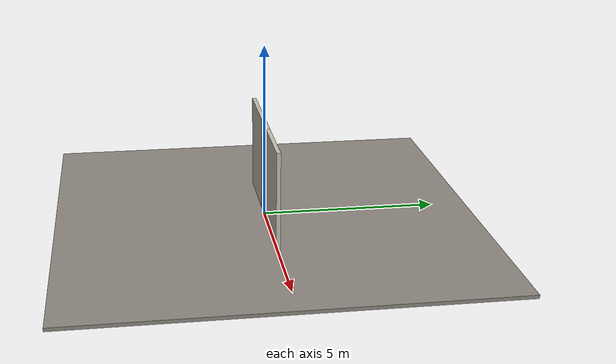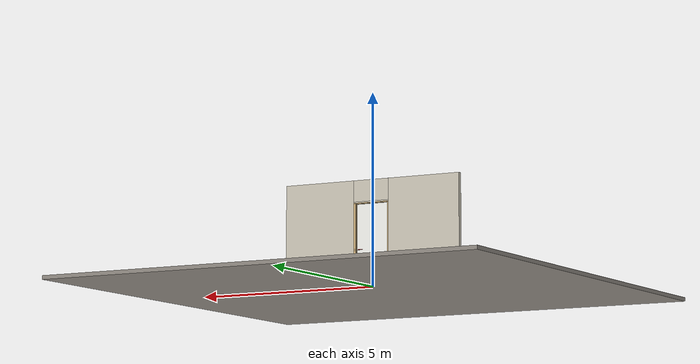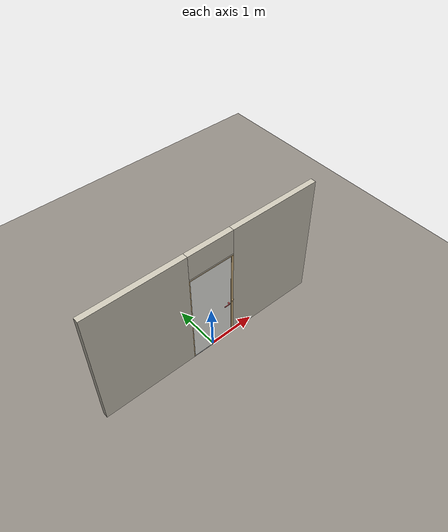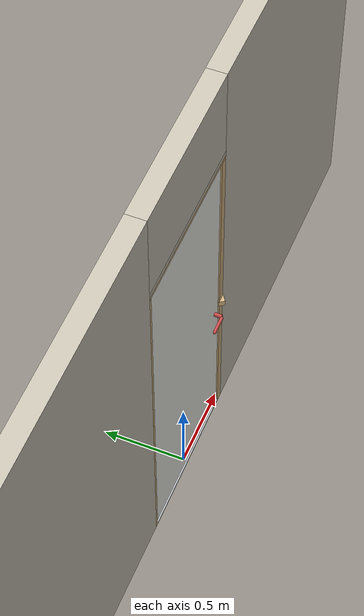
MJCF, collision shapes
<?xml version="1.0" ?>
<mujoco model="db0781_swing_single_minimal">
  <compiler angle="radian" meshdir="../../hardware" texturedir="../../textures" autolimits="true" inertiafromgeom="false"/>
  <option timestep="0.002" integrator="implicitfast" cone="elliptic" impratio="10" noslip_iterations="3">
    <flag multiccd="enable"/>
  </option>
  <size memory="16M"/>
  <default>
    <geom condim="4" solref="0.005 1" solimp="0.95 0.99 0.001"/>
    <joint solreflimit="0.005 1" solimplimit="0.95 0.99 0.001"/>
    <tendon solreflimit="0.005 1"/>
    <equality solref="0.002 1"/>
  </default>
  <visual>
    <headlight ambient="0.4 0.4 0.4" diffuse="0.7 0.7 0.7" specular="0.2 0.2 0.2"/>
    <quality shadowsize="4096"/>
    <map znear="0.01" zfar="60"/>
  </visual>
  <asset>
    <mesh name="lever_9f02b544cf" file="lever_9f02b544cf.obj"/>
    <material name="mat_floor" rgba="0.55 0.53 0.5 1" specular="0.2" shininess="0.15" reflectance="0"/>
    <material name="mat_wall" rgba="0.78 0.76 0.7 1" specular="0.2" shininess="0.1" reflectance="0"/>
    <material name="mat_leaf" rgba="0.93 0.93 0.91 1" specular="0.23" shininess="0.63" reflectance="0.02"/>
    <material name="mat_leaf_panel" rgba="0.856 0.856 0.837 1" specular="0.23" shininess="0.63" reflectance="0.02"/>
    <material name="mat_hinge" rgba="0.65 0.66 0.68 1" specular="0.74" shininess="0.5" reflectance="0.36"/>
    <material name="mat_op_nickel_satin" rgba="0.72 0.7 0.66 1" specular="0.8" shininess="0.65" reflectance="0.4"/>
    <material name="mat_trim" rgba="0.85 0.66 0.3 1" specular="0.8" shininess="0.75" reflectance="0.4"/>
    <material name="mat_bolt" rgba="0.85 0.66 0.3 1" specular="0.8" shininess="0.75" reflectance="0.4"/>
    <material name="mat_chain" rgba="0.85 0.66 0.3 1" specular="0.8" shininess="0.75" reflectance="0.4"/>
    <material name="mat_frame" rgba="0.82 0.7 0.5 1" specular="0.2" shininess="0.45" reflectance="0"/>
    <material name="mat_seal" rgba="0.1 0.1 0.1 1" specular="0.2" shininess="0.1" reflectance="0"/>
    <material name="mat_threshold" rgba="0.8 0.81 0.83 1" specular="0.8" shininess="0.6" reflectance="0.4"/>
    <material name="mat_numbers" rgba="0.05 0.05 0.05 1" specular="0.38" shininess="0.3" reflectance="0.12"/>
    <material name="mat_sidelite" rgba="0.85 0.92 0.95 0.25" specular="0.2" shininess="0.95" reflectance="0.1"/>
    <material name="mat_bumper_stop" rgba="0.08 0.08 0.08 1" specular="0.2" shininess="0.1" reflectance="0"/>
    <material name="mat_stop_base" rgba="0.9 0.9 0.92 1" specular="0.8" shininess="0.9" reflectance="0.4"/>
    <texture name="skybox" type="skybox" builtin="gradient" rgb1="0.6 0.7 0.85" rgb2="0.9 0.92 0.95" width="256" height="256"/>
  </asset>
  <worldbody>
    <light name="sun" pos="1.5 -2.5 4" dir="-0.3 0.5 -0.8" directional="true" diffuse="0.8 0.8 0.8" specular="0.3 0.3 0.3" castshadow="true"/>
    <light name="fill" pos="-1.5 2.5 3" dir="0.3 -0.5 -0.7" directional="true" diffuse="0.35 0.35 0.4" castshadow="false"/>
    <camera name="robot_view" pos="0 -2.609312 1.812087" xyaxes="1 0 0 0 0.26963 0.962964" fovy="52"/>
    <camera name="far_view" pos="0 2.666313 1.812087" xyaxes="-1 0 0 0 -0.26963 0.962964" fovy="52"/>
    <camera name="iso" pos="2.004737 -2.187262 2.234138" xyaxes="0.741536 0.670913 0 -0.242917 0.268487 0.932151" fovy="46"/>
    <camera name="detail_handle" pos="0.4665 -0.877 1.245" xyaxes="0.97561 0.219512 0 -0.070934 0.315262 0.94635" fovy="38"/>
    <geom name="floor" type="box" size="6 6 0.05" pos="0 0 -0.05" material="mat_floor" group="0" contype="1" conaffinity="1" friction="0.8 0.005 0.0001" density="2400"/>
    <geom name="wall_left" type="box" size="1.01025 0.0575 1.3735" pos="-1.48975 0.0285 1.3735" material="mat_wall" group="0" contype="1" conaffinity="1" friction="0.6 0.005 0.0001" density="800"/>
    <geom name="wall_right" type="box" size="0.99525 0.0575 1.3735" pos="1.50475 0.0285 1.3735" material="mat_wall" group="0" contype="1" conaffinity="1" friction="0.6 0.005 0.0001" density="800"/>
    <geom name="wall_header" type="box" size="0.4945 0.0575 0.2755" pos="0.015 0.0285 2.4715" material="mat_wall" group="0" contype="1" conaffinity="1" friction="0.6 0.005 0.0001" density="800"/>
    <geom name="jamb_hinge" type="box" size="0.0095 0.0575 1.0735" pos="-0.47 0.0285 1.0735" material="mat_frame" group="0" contype="1" conaffinity="1" friction="0.6 0.005 0.0001" density="400"/>
    <geom name="strike_965_wall_n" type="box" size="0.0245 0.03825 0.0183" pos="0.485 0.04775 0.965" material="mat_frame" group="0" contype="1" conaffinity="1" friction="0.6 0.005 0.0001" density="400"/>
    <geom name="strike_965_wall_p" type="box" size="0.0245 0.008 0.0183" pos="0.485 -0.0175 0.965" material="mat_frame" group="0" contype="1" conaffinity="1" friction="0.6 0.005 0.0001" density="400"/>
    <geom name="strike_965_ramp" type="box" size="0.0245 0.018028 0.0183" pos="0.490885 -0.02691 0.965" quat="0.957092 0 0 0.289784" material="mat_frame" group="0" contype="1" conaffinity="1" friction="0.12 0.005 0.0001" density="400"/>
    <geom name="strike_965_back" type="box" size="0.013 0.0095 0.0183" pos="0.4965 0 0.965" material="mat_frame" group="0" contype="1" conaffinity="1" friction="0.6 0.005 0.0001" density="400"/>
    <geom name="jamb_strike_0" type="box" size="0.0245 0.0575 0.47335" pos="0.485 0.0285 0.47335" material="mat_frame" group="0" contype="1" conaffinity="1" friction="0.6 0.005 0.0001" density="400"/>
    <geom name="jamb_strike_1" type="box" size="0.0245 0.0575 0.58185" pos="0.485 0.0285 1.56515" material="mat_frame" group="0" contype="1" conaffinity="1" friction="0.6 0.005 0.0001" density="400"/>
    <geom name="jamb_head" type="box" size="0.4945 0.0575 0.0095" pos="0.015 0.0285 2.1565" material="mat_frame" group="0" contype="1" conaffinity="1" friction="0.6 0.005 0.0001" density="400"/>
    <geom name="head_stud" type="box" size="0.4945 0.0575 0.015" pos="0.015 0.0285 2.181" material="mat_wall" group="0" contype="1" conaffinity="1" friction="0.6 0.005 0.0001" density="500"/>
    <geom name="stop_hinge" type="box" size="0.0055 0.016 1.0735" pos="-0.455 0.0385 1.0735" material="mat_frame" group="0" contype="1" conaffinity="1" friction="0.6 0.005 0.0001" density="400"/>
    <geom name="stop_strike" type="box" size="0.0055 0.016 1.0735" pos="0.455 0.0385 1.0735" material="mat_frame" group="0" contype="1" conaffinity="1" friction="0.6 0.005 0.0001" density="400"/>
    <geom name="stop_head" type="box" size="0.4605 0.016 0.0055" pos="0 0.0385 2.1415" material="mat_frame" group="0" contype="1" conaffinity="1" friction="0.6 0.005 0.0001" density="400"/>
    <geom name="threshold" type="box" size="0.4795 0.0575 0.0065" pos="0 0.0285 0.0065" material="mat_threshold" group="0" contype="1" conaffinity="1" friction="0.5 0.005 0.0001" density="2700"/>
    <site name="approach_point" pos="0 -1.5 0" quat="1 0 0 0" size="0.05" rgba="0.2 0.9 0.2 0.5" group="4"/>
    <site name="goal_point" pos="0 1.5 0" quat="1 0 0 0" size="0.05" rgba="0.2 0.9 0.2 0.5" group="4"/>
    <site name="door_plane_center" pos="0 0 1.0735" quat="1 0 0 0" size="0.02" rgba="0.2 0.9 0.2 0.5" group="4"/>
    <body name="leaf" pos="-0.4605 0 0">
      <inertial pos="0.46 0 1.08" mass="26.940837" quat="-0.5 0.5 0.5 0.5" diaginertia="1.879868731 10.151783265 12.022959086"/>
      <joint name="leaf_hinge" type="hinge" axis="0 0 -1" pos="0.003 -0.029 0" limited="true" range="0 0.098439" solreflimit="0.02 1" damping="0.318966" frictionloss="1.185438" armature="0.02"/>
      <geom name="leaf_slab" type="box" size="0.457 0.022 1.063" pos="0.46 0 1.08" material="mat_leaf" group="0" contype="1" conaffinity="1" friction="0.4 0.005 0.0001" density="1"/>
      <site name="leaf_edge_mid" pos="0.917 0 1.063" quat="1 0 0 0" size="0.02" rgba="0.2 0.9 0.2 0.5" group="4"/>
      <body name="leaf_handle" pos="0.847 0 0.965">
        <inertial pos="-0.030188 0 0" mass="0.924918" quat="0.707107 0 0 -0.707107" diaginertia="0.001725188 0.003587995 0.005135939"/>
        <joint name="leaf_handle_hinge" type="hinge" axis="0 -1 0" limited="true" range="0 0.96" damping="0.245624" frictionloss="0.048" stiffness="1.2" springref="-0.458333" armature="0.01"/>
        <geom name="leaf_handle_lever_n" type="mesh" mesh="lever_9f02b544cf" pos="0 -0.022 0" quat="0.707107 0.707107 0 0" material="mat_op_nickel_satin" group="1" contype="0" conaffinity="0" density="3000"/>
        <geom name="leaf_handle_lever_col_n" type="capsule" size="0.0095 0.053" pos="-0.0625 -0.077 0" quat="0.707107 0 -0.707107 0" material="mat_op_nickel_satin" group="3" contype="1" conaffinity="1" rgba="0.8 0.3 0.3 0.25" friction="0.7 0.01 0.0001" density="3000"/>
        <geom name="leaf_handle_hub_col_n" type="cylinder" size="0.012 0.022" pos="0 -0.052 0" quat="0.707107 -0.707107 0 0" material="mat_op_nickel_satin" group="3" contype="1" conaffinity="1" rgba="0.8 0.3 0.3 0.25" friction="0.6 0.005 0.0001" density="3000"/>
        <geom name="leaf_handle_lever_p" type="mesh" mesh="lever_9f02b544cf" pos="0 0.022 0" quat="-0.707107 0.707107 0 0" material="mat_op_nickel_satin" group="1" contype="0" conaffinity="0" density="3000"/>
        <geom name="leaf_handle_lever_col_p" type="capsule" size="0.0095 0.053" pos="-0.0625 0.077 0" quat="0.707107 0 -0.707107 0" material="mat_op_nickel_satin" group="3" contype="1" conaffinity="1" rgba="0.8 0.3 0.3 0.25" friction="0.7 0.01 0.0001" density="3000"/>
        <geom name="leaf_handle_hub_col_p" type="cylinder" size="0.012 0.022" pos="0 0.052 0" quat="0.707107 -0.707107 0 0" material="mat_op_nickel_satin" group="3" contype="1" conaffinity="1" rgba="0.8 0.3 0.3 0.25" friction="0.6 0.005 0.0001" density="3000"/>
        <site name="leaf_handle_grip_n" pos="-0.1 -0.077 0" quat="1 0 0 0" size="0.012" rgba="0.2 0.9 0.2 0.5" group="4"/>
        <site name="leaf_handle_grip_p" pos="-0.1 0.077 0" quat="1 0 0 0" size="0.012" rgba="0.2 0.9 0.2 0.5" group="4"/>
      </body>
      <body name="leaf_latch_bolt" pos="0.917 0 0.965">
        <inertial pos="-0.0055 0 0" mass="0.074627" quat="0.92388 -0.382683 0 0" diaginertia="0.000002271 0.000013255 0.000013255"/>
        <joint name="leaf_latch_bolt_slide" type="slide" axis="-1 0 0" limited="true" range="0 0.019" damping="2" frictionloss="0.3" stiffness="600" springref="-0.01" armature="0.1"/>
        <geom name="leaf_latch_bolt_capsule" type="capsule" size="0.008 0.0165" pos="-0.0055 0 0" quat="0.707107 0 0.707107 0" material="mat_bolt" group="0" contype="1" conaffinity="1" friction="0.2 0.005 0.0001" density="8500"/>
      </body>
    </body>
  </worldbody>
  <tendon>
    <fixed name="leaf_latch_bolt_coupling" limited="true" range="0 10">
      <joint joint="leaf_latch_bolt_slide" coef="1"/>
      <joint joint="leaf_handle_hinge" coef="-0.020879"/>
    </fixed>
  </tendon>
  <sensor>
    <jointpos name="leaf_hinge_pos" joint="leaf_hinge"/>
    <jointvel name="leaf_hinge_vel" joint="leaf_hinge"/>
    <jointpos name="leaf_handle_hinge_pos" joint="leaf_handle_hinge"/>
    <jointvel name="leaf_handle_hinge_vel" joint="leaf_handle_hinge"/>
    <jointpos name="leaf_latch_bolt_slide_pos" joint="leaf_latch_bolt_slide"/>
    <jointvel name="leaf_latch_bolt_slide_vel" joint="leaf_latch_bolt_slide"/>
  </sensor>
</mujoco>
